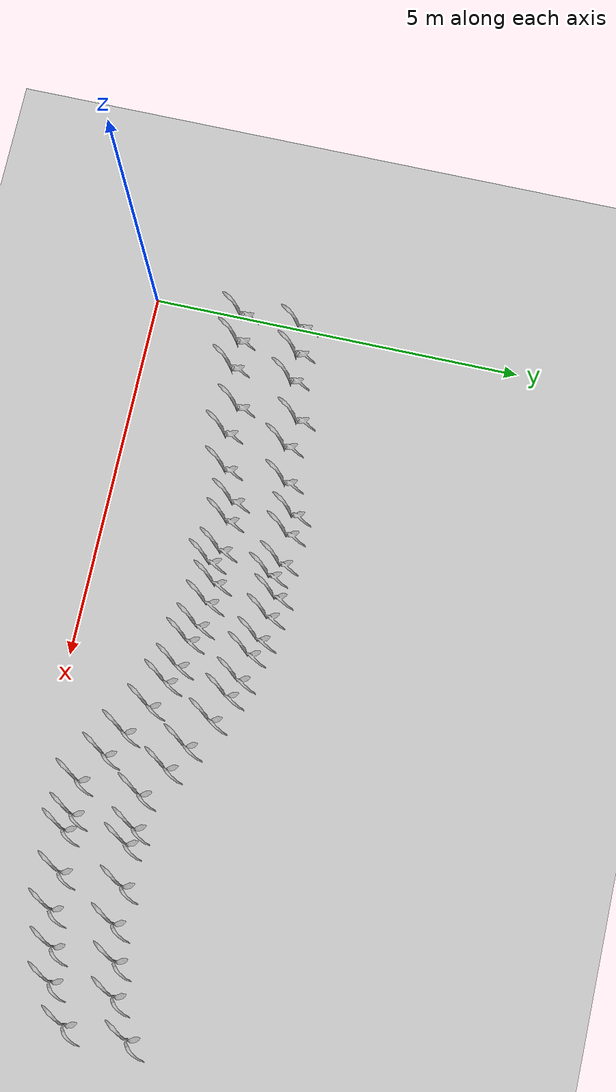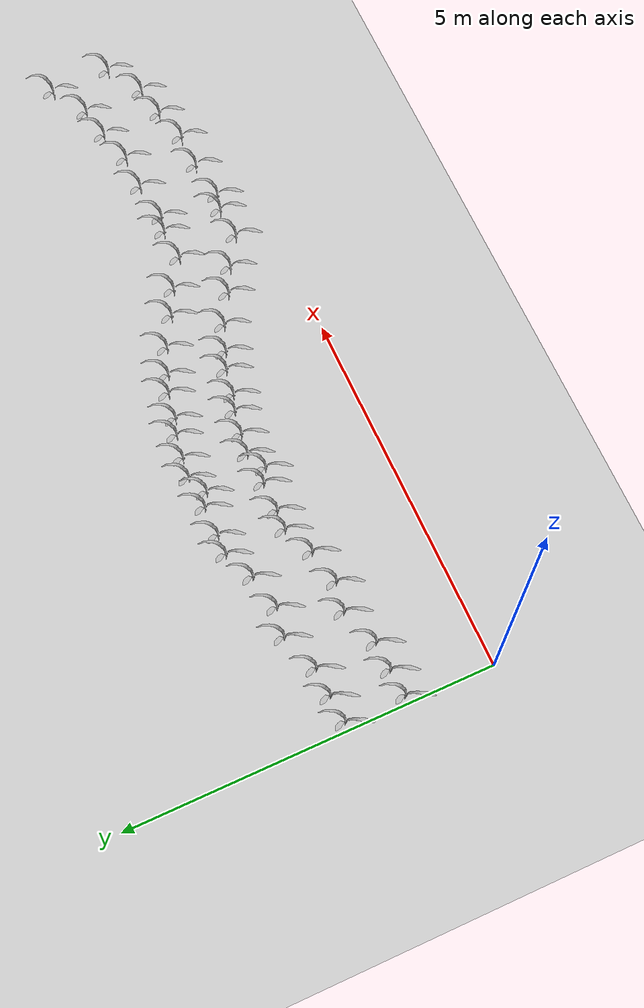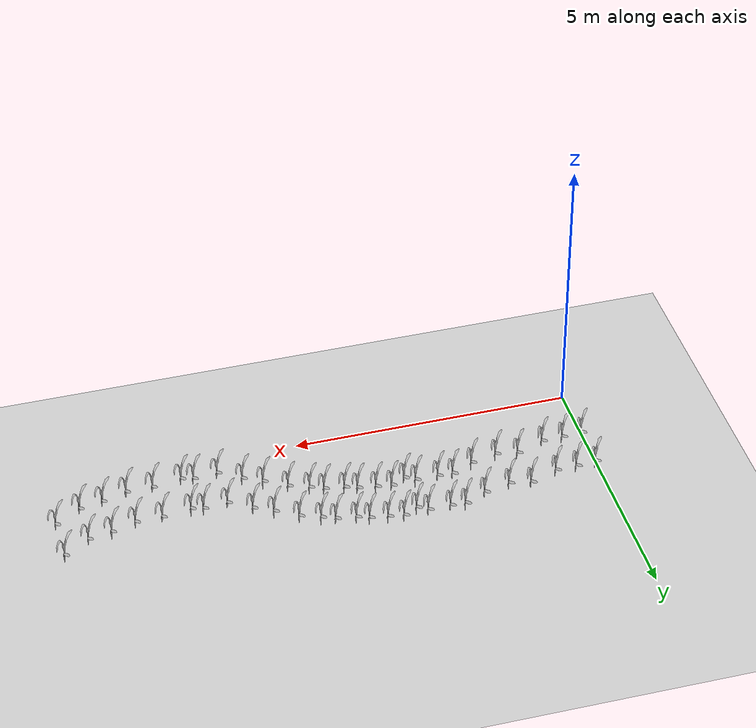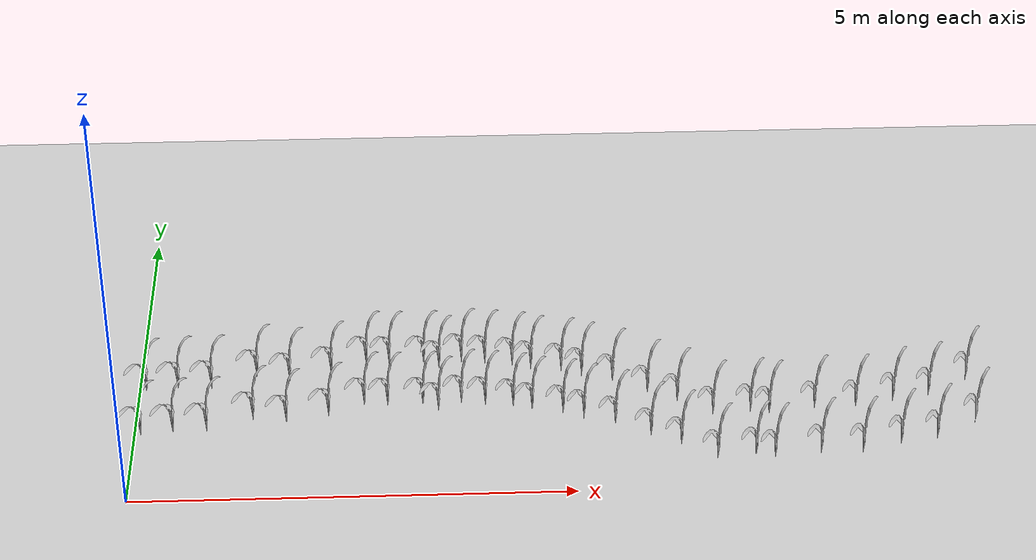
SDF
<sdf version="1.7">
 <world name="default">
  <model name="ground_plane">
   <static>1</static>
   <link name="link">
    <collision name="collision">
     <geometry><plane><normal>0 0 1</normal><size>100 100</size></plane></geometry>
     <surface>
      <contact><collide_bitmask>65535</collide_bitmask></contact>
      <friction><ode><mu>100</mu><mu2>50</mu2></ode></friction>
     </surface>
    </collision>
    <visual name="visual">
     <cast_shadows>0</cast_shadows>
     <geometry><plane><normal>0 0 1</normal><size>100 100</size></plane></geometry>
     <material>
      <script><uri>file://media/materials/scripts/gazebo.material</uri><name>Gazebo/Grey</name></script>
     </material>
    </visual>
   </link>
  </model>
  <model name="maize_row_clone_0">
   <model name="maize_02">
    <pose>-4.63661 0.027408 0 0 -0 0</pose>
    <link name="maize_02_link">
     <inertial>
      <pose>0 0 0.01 0 -0 0</pose>
      <mass>0.3</mass>
      <inertia>
       <ixx>0.00334167</ixx>
       <ixy>0</ixy>
       <ixz>0</ixz>
       <iyy>0.00334167</iyy>
       <iyz>0</iyz>
       <izz>1.66667e-05</izz>
      </inertia>
      <pose>0 0 0.1 0 -0 0</pose>
     </inertial>
     <collision name="collision">
      <pose>0 0 0.2 0 -0 0</pose>
      <geometry><box><size>0.02 0.02 0.4</size></box></geometry>
      <surface><friction><ode><mu>10</mu><mu2>10</mu2></ode></friction></surface>
     </collision>
     <visual name="visual">
      <geometry>
       <mesh><uri>model://maize_02/meshes/maize_02.dae</uri><scale>0.683166 0.683166 0.683166</scale></mesh>
      </geometry>
     </visual>
    </link>
   </model>
   <model name="maize_02_clone">
    <pose>-4.27241 0.05616 0 0 -0 0</pose>
    <link name="maize_02_link">
     <inertial>
      <pose>0 0 0.01 0 -0 0</pose>
      <mass>0.3</mass>
      <inertia>
       <ixx>0.00334167</ixx>
       <ixy>0</ixy>
       <ixz>0</ixz>
       <iyy>0.00334167</iyy>
       <iyz>0</iyz>
       <izz>1.66667e-05</izz>
      </inertia>
      <pose>0 0 0.1 0 -0 0</pose>
     </inertial>
     <collision name="collision">
      <pose>0 0 0.2 0 -0 0</pose>
      <geometry><box><size>0.02 0.02 0.4</size></box></geometry>
      <surface><friction><ode><mu>10</mu><mu2>10</mu2></ode></friction></surface>
     </collision>
     <visual name="visual">
      <geometry>
       <mesh><uri>model://maize_02/meshes/maize_02.dae</uri><scale>0.683166 0.683166 0.683166</scale></mesh>
      </geometry>
     </visual>
    </link>
   </model>
   <model name="maize_02_clone_0">
    <pose>-3.88904 0.065744 0 0 -0 0</pose>
    <link name="maize_02_link">
     <inertial>
      <pose>0 0 0.01 0 -0 0</pose>
      <mass>0.3</mass>
      <inertia>
       <ixx>0.00334167</ixx>
       <ixy>0</ixy>
       <ixz>0</ixz>
       <iyy>0.00334167</iyy>
       <iyz>0</iyz>
       <izz>1.66667e-05</izz>
      </inertia>
      <pose>0 0 0.1 0 -0 0</pose>
     </inertial>
     <collision name="collision">
      <pose>0 0 0.2 0 -0 0</pose>
      <geometry><box><size>0.02 0.02 0.4</size></box></geometry>
      <surface><friction><ode><mu>10</mu><mu2>10</mu2></ode></friction></surface>
     </collision>
     <visual name="visual">
      <geometry>
       <mesh><uri>model://maize_02/meshes/maize_02.dae</uri><scale>0.683166 0.683166 0.683166</scale></mesh>
      </geometry>
     </visual>
    </link>
   </model>
   <model name="maize_02_clone_1">
    <pose>-3.37149 0.257428 0 0 -0 0</pose>
    <link name="maize_02_link">
     <inertial>
      <pose>0 0 0.01 0 -0 0</pose>
      <mass>0.3</mass>
      <inertia>
       <ixx>0.00334167</ixx>
       <ixy>0</ixy>
       <ixz>0</ixz>
       <iyy>0.00334167</iyy>
       <iyz>0</iyz>
       <izz>1.66667e-05</izz>
      </inertia>
      <pose>0 0 0.1 0 -0 0</pose>
     </inertial>
     <collision name="collision">
      <pose>0 0 0.2 0 -0 0</pose>
      <geometry><box><size>0.02 0.02 0.4</size></box></geometry>
      <surface><friction><ode><mu>10</mu><mu2>10</mu2></ode></friction></surface>
     </collision>
     <visual name="visual">
      <geometry>
       <mesh><uri>model://maize_02/meshes/maize_02.dae</uri><scale>0.683166 0.683166 0.683166</scale></mesh>
      </geometry>
     </visual>
    </link>
   </model>
   <model name="maize_02_clone_10">
    <pose>-0.393317 0.390237 0 0 -0 0</pose>
    <link name="maize_02_link">
     <inertial>
      <pose>0 0 0.01 0 -0 0</pose>
      <mass>0.3</mass>
      <inertia>
       <ixx>0.00334167</ixx>
       <ixy>0</ixy>
       <ixz>0</ixz>
       <iyy>0.00334167</iyy>
       <iyz>0</iyz>
       <izz>1.66667e-05</izz>
      </inertia>
      <pose>0 0 0.1 0 -0 0</pose>
     </inertial>
     <collision name="collision">
      <pose>0 0 0.2 0 -0 0</pose>
      <geometry><box><size>0.02 0.02 0.4</size></box></geometry>
      <surface><friction><ode><mu>10</mu><mu2>10</mu2></ode></friction></surface>
     </collision>
     <visual name="visual">
      <geometry>
       <mesh><uri>model://maize_02/meshes/maize_02.dae</uri><scale>0.683166 0.683166 0.683166</scale></mesh>
      </geometry>
     </visual>
    </link>
   </model>
   <model name="maize_02_clone_11">
    <pose>0.410873 0.154867 0 0 -0 0</pose>
    <link name="maize_02_link">
     <inertial>
      <pose>0 0 0.01 0 -0 0</pose>
      <mass>0.3</mass>
      <inertia>
       <ixx>0.00334167</ixx>
       <ixy>0</ixy>
       <ixz>0</ixz>
       <iyy>0.00334167</iyy>
       <iyz>0</iyz>
       <izz>1.66667e-05</izz>
      </inertia>
      <pose>0 0 0.1 0 -0 0</pose>
     </inertial>
     <collision name="collision">
      <pose>0 0 0.2 0 -0 0</pose>
      <geometry><box><size>0.02 0.02 0.4</size></box></geometry>
      <surface><friction><ode><mu>10</mu><mu2>10</mu2></ode></friction></surface>
     </collision>
     <visual name="visual">
      <geometry>
       <mesh><uri>model://maize_02/meshes/maize_02.dae</uri><scale>0.683166 0.683166 0.683166</scale></mesh>
      </geometry>
     </visual>
    </link>
   </model>
   <model name="maize_02_clone_12">
    <pose>0.175502 0.252945 0 0 -0 0</pose>
    <link name="maize_02_link">
     <inertial>
      <pose>0 0 0.01 0 -0 0</pose>
      <mass>0.3</mass>
      <inertia>
       <ixx>0.00334167</ixx>
       <ixy>0</ixy>
       <ixz>0</ixz>
       <iyy>0.00334167</iyy>
       <iyz>0</iyz>
       <izz>1.66667e-05</izz>
      </inertia>
      <pose>0 0 0.1 0 -0 0</pose>
     </inertial>
     <collision name="collision">
      <pose>0 0 0.2 0 -0 0</pose>
      <geometry><box><size>0.02 0.02 0.4</size></box></geometry>
      <surface><friction><ode><mu>10</mu><mu2>10</mu2></ode></friction></surface>
     </collision>
     <visual name="visual">
      <geometry>
       <mesh><uri>model://maize_02/meshes/maize_02.dae</uri><scale>0.683166 0.683166 0.683166</scale></mesh>
      </geometry>
     </visual>
    </link>
   </model>
   <model name="maize_02_clone_13">
    <pose>0.76395 0.017569 0 0 -0 0</pose>
    <link name="maize_02_link">
     <inertial>
      <pose>0 0 0.01 0 -0 0</pose>
      <mass>0.3</mass>
      <inertia>
       <ixx>0.00334167</ixx>
       <ixy>0</ixy>
       <ixz>0</ixz>
       <iyy>0.00334167</iyy>
       <iyz>0</iyz>
       <izz>1.66667e-05</izz>
      </inertia>
      <pose>0 0 0.1 0 -0 0</pose>
     </inertial>
     <collision name="collision">
      <pose>0 0 0.2 0 -0 0</pose>
      <geometry><box><size>0.02 0.02 0.4</size></box></geometry>
      <surface><friction><ode><mu>10</mu><mu2>10</mu2></ode></friction></surface>
     </collision>
     <visual name="visual">
      <geometry>
       <mesh><uri>model://maize_02/meshes/maize_02.dae</uri><scale>0.683166 0.683166 0.683166</scale></mesh>
      </geometry>
     </visual>
    </link>
   </model>
   <model name="maize_02_clone_14">
    <pose>1.15624 -0.217806 0 0 -0 0</pose>
    <link name="maize_02_link">
     <inertial>
      <pose>0 0 0.01 0 -0 0</pose>
      <mass>0.3</mass>
      <inertia>
       <ixx>0.00334167</ixx>
       <ixy>0</ixy>
       <ixz>0</ixz>
       <iyy>0.00334167</iyy>
       <iyz>0</iyz>
       <izz>1.66667e-05</izz>
      </inertia>
      <pose>0 0 0.1 0 -0 0</pose>
     </inertial>
     <collision name="collision">
      <pose>0 0 0.2 0 -0 0</pose>
      <geometry><box><size>0.02 0.02 0.4</size></box></geometry>
      <surface><friction><ode><mu>10</mu><mu2>10</mu2></ode></friction></surface>
     </collision>
     <visual name="visual">
      <geometry>
       <mesh><uri>model://maize_02/meshes/maize_02.dae</uri><scale>0.683166 0.683166 0.683166</scale></mesh>
      </geometry>
     </visual>
    </link>
   </model>
   <model name="maize_02_clone_15">
    <pose>1.48967 -0.39434 0 0 -0 0</pose>
    <link name="maize_02_link">
     <inertial>
      <pose>0 0 0.01 0 -0 0</pose>
      <mass>0.3</mass>
      <inertia>
       <ixx>0.00334167</ixx>
       <ixy>0</ixy>
       <ixz>0</ixz>
       <iyy>0.00334167</iyy>
       <iyz>0</iyz>
       <izz>1.66667e-05</izz>
      </inertia>
      <pose>0 0 0.1 0 -0 0</pose>
     </inertial>
     <collision name="collision">
      <pose>0 0 0.2 0 -0 0</pose>
      <geometry><box><size>0.02 0.02 0.4</size></box></geometry>
      <surface><friction><ode><mu>10</mu><mu2>10</mu2></ode></friction></surface>
     </collision>
     <visual name="visual">
      <geometry>
       <mesh><uri>model://maize_02/meshes/maize_02.dae</uri><scale>0.683166 0.683166 0.683166</scale></mesh>
      </geometry>
     </visual>
    </link>
   </model>
   <model name="maize_02_clone_16">
    <pose>1.88196 -0.649333 0 0 -0 0</pose>
    <link name="maize_02_link">
     <inertial>
      <pose>0 0 0.01 0 -0 0</pose>
      <mass>0.3</mass>
      <inertia>
       <ixx>0.00334167</ixx>
       <ixy>0</ixy>
       <ixz>0</ixz>
       <iyy>0.00334167</iyy>
       <iyz>0</iyz>
       <izz>1.66667e-05</izz>
      </inertia>
      <pose>0 0 0.1 0 -0 0</pose>
     </inertial>
     <collision name="collision">
      <pose>0 0 0.2 0 -0 0</pose>
      <geometry><box><size>0.02 0.02 0.4</size></box></geometry>
      <surface><friction><ode><mu>10</mu><mu2>10</mu2></ode></friction></surface>
     </collision>
     <visual name="visual">
      <geometry>
       <mesh><uri>model://maize_02/meshes/maize_02.dae</uri><scale>0.683166 0.683166 0.683166</scale></mesh>
      </geometry>
     </visual>
    </link>
   </model>
   <model name="maize_02_clone_17">
    <pose>2.52627 -0.672048 0 0 -0 0</pose>
    <link name="maize_02_link">
     <inertial>
      <pose>0 0 0.01 0 -0 0</pose>
      <mass>0.3</mass>
      <inertia>
       <ixx>0.00334167</ixx>
       <ixy>0</ixy>
       <ixz>0</ixz>
       <iyy>0.00334167</iyy>
       <iyz>0</iyz>
       <izz>1.66667e-05</izz>
      </inertia>
      <pose>0 0 0.1 0 -0 0</pose>
     </inertial>
     <collision name="collision">
      <pose>0 0 0.2 0 -0 0</pose>
      <geometry><box><size>0.02 0.02 0.4</size></box></geometry>
      <surface><friction><ode><mu>10</mu><mu2>10</mu2></ode></friction></surface>
     </collision>
     <visual name="visual">
      <geometry>
       <mesh><uri>model://maize_02/meshes/maize_02.dae</uri><scale>0.683166 0.683166 0.683166</scale></mesh>
      </geometry>
     </visual>
    </link>
   </model>
   <model name="maize_02_clone_18">
    <pose>2.3152 -0.619273 0 0 -0 0</pose>
    <link name="maize_02_link">
     <inertial>
      <pose>0 0 0.01 0 -0 0</pose>
      <mass>0.3</mass>
      <inertia>
       <ixx>0.00334167</ixx>
       <ixy>0</ixy>
       <ixz>0</ixz>
       <iyy>0.00334167</iyy>
       <iyz>0</iyz>
       <izz>1.66667e-05</izz>
      </inertia>
      <pose>0 0 0.1 0 -0 0</pose>
     </inertial>
     <collision name="collision">
      <pose>0 0 0.2 0 -0 0</pose>
      <geometry><box><size>0.02 0.02 0.4</size></box></geometry>
      <surface><friction><ode><mu>10</mu><mu2>10</mu2></ode></friction></surface>
     </collision>
     <visual name="visual">
      <geometry>
       <mesh><uri>model://maize_02/meshes/maize_02.dae</uri><scale>0.683166 0.683166 0.683166</scale></mesh>
      </geometry>
     </visual>
    </link>
   </model>
   <model name="maize_02_clone_19">
    <pose>3.05425 -0.592874 0 0 -0 0</pose>
    <link name="maize_02_link">
     <inertial>
      <pose>0 0 0.01 0 -0 0</pose>
      <mass>0.3</mass>
      <inertia>
       <ixx>0.00334167</ixx>
       <ixy>0</ixy>
       <ixz>0</ixz>
       <iyy>0.00334167</iyy>
       <iyz>0</iyz>
       <izz>1.66667e-05</izz>
      </inertia>
      <pose>0 0 0.1 0 -0 0</pose>
     </inertial>
     <collision name="collision">
      <pose>0 0 0.2 0 -0 0</pose>
      <geometry><box><size>0.02 0.02 0.4</size></box></geometry>
      <surface><friction><ode><mu>10</mu><mu2>10</mu2></ode></friction></surface>
     </collision>
     <visual name="visual">
      <geometry>
       <mesh><uri>model://maize_02/meshes/maize_02.dae</uri><scale>0.683166 0.683166 0.683166</scale></mesh>
      </geometry>
     </visual>
    </link>
   </model>
   <model name="maize_02_clone_2">
    <pose>-2.98813 0.180754 0 0 -0 0</pose>
    <link name="maize_02_link">
     <inertial>
      <pose>0 0 0.01 0 -0 0</pose>
      <mass>0.3</mass>
      <inertia>
       <ixx>0.00334167</ixx>
       <ixy>0</ixy>
       <ixz>0</ixz>
       <iyy>0.00334167</iyy>
       <iyz>0</iyz>
       <izz>1.66667e-05</izz>
      </inertia>
      <pose>0 0 0.1 0 -0 0</pose>
     </inertial>
     <collision name="collision">
      <pose>0 0 0.2 0 -0 0</pose>
      <geometry><box><size>0.02 0.02 0.4</size></box></geometry>
      <surface><friction><ode><mu>10</mu><mu2>10</mu2></ode></friction></surface>
     </collision>
     <visual name="visual">
      <geometry>
       <mesh><uri>model://maize_02/meshes/maize_02.dae</uri><scale>0.683166 0.683166 0.683166</scale></mesh>
      </geometry>
     </visual>
    </link>
   </model>
   <model name="maize_02_clone_20">
    <pose>3.5294 -0.592874 0 0 -0 0</pose>
    <link name="maize_02_link">
     <inertial>
      <pose>0 0 0.01 0 -0 0</pose>
      <mass>0.3</mass>
      <inertia>
       <ixx>0.00334167</ixx>
       <ixy>0</ixy>
       <ixz>0</ixz>
       <iyy>0.00334167</iyy>
       <iyz>0</iyz>
       <izz>1.66667e-05</izz>
      </inertia>
      <pose>0 0 0.1 0 -0 0</pose>
     </inertial>
     <collision name="collision">
      <pose>0 0 0.2 0 -0 0</pose>
      <geometry><box><size>0.02 0.02 0.4</size></box></geometry>
      <surface><friction><ode><mu>10</mu><mu2>10</mu2></ode></friction></surface>
     </collision>
     <visual name="visual">
      <geometry>
       <mesh><uri>model://maize_02/meshes/maize_02.dae</uri><scale>0.683166 0.683166 0.683166</scale></mesh>
      </geometry>
     </visual>
    </link>
   </model>
   <model name="maize_02_clone_21">
    <pose>3.97801 -0.460902 0 0 -0 0</pose>
    <link name="maize_02_link">
     <inertial>
      <pose>0 0 0.01 0 -0 0</pose>
      <mass>0.3</mass>
      <inertia>
       <ixx>0.00334167</ixx>
       <ixy>0</ixy>
       <ixz>0</ixz>
       <iyy>0.00334167</iyy>
       <iyz>0</iyz>
       <izz>1.66667e-05</izz>
      </inertia>
      <pose>0 0 0.1 0 -0 0</pose>
     </inertial>
     <collision name="collision">
      <pose>0 0 0.2 0 -0 0</pose>
      <geometry><box><size>0.02 0.02 0.4</size></box></geometry>
      <surface><friction><ode><mu>10</mu><mu2>10</mu2></ode></friction></surface>
     </collision>
     <visual name="visual">
      <geometry>
       <mesh><uri>model://maize_02/meshes/maize_02.dae</uri><scale>0.683166 0.683166 0.683166</scale></mesh>
      </geometry>
     </visual>
    </link>
   </model>
   <model name="maize_02_clone_22">
    <pose>4.40033 -0.381713 0 0 -0 0</pose>
    <link name="maize_02_link">
     <inertial>
      <pose>0 0 0.01 0 -0 0</pose>
      <mass>0.3</mass>
      <inertia>
       <ixx>0.00334167</ixx>
       <ixy>0</ixy>
       <ixz>0</ixz>
       <iyy>0.00334167</iyy>
       <iyz>0</iyz>
       <izz>1.66667e-05</izz>
      </inertia>
      <pose>0 0 0.1 0 -0 0</pose>
     </inertial>
     <collision name="collision">
      <pose>0 0 0.2 0 -0 0</pose>
      <geometry><box><size>0.02 0.02 0.4</size></box></geometry>
      <surface><friction><ode><mu>10</mu><mu2>10</mu2></ode></friction></surface>
     </collision>
     <visual name="visual">
      <geometry>
       <mesh><uri>model://maize_02/meshes/maize_02.dae</uri><scale>0.683166 0.683166 0.683166</scale></mesh>
      </geometry>
     </visual>
    </link>
   </model>
   <model name="maize_02_clone_23">
    <pose>4.87542 -0.091378 0 0 -0 0</pose>
    <link name="maize_02_link">
     <inertial>
      <pose>0 0 0.01 0 -0 0</pose>
      <mass>0.3</mass>
      <inertia>
       <ixx>0.00334167</ixx>
       <ixy>0</ixy>
       <ixz>0</ixz>
       <iyy>0.00334167</iyy>
       <iyz>0</iyz>
       <izz>1.66667e-05</izz>
      </inertia>
      <pose>0 0 0.1 0 -0 0</pose>
     </inertial>
     <collision name="collision">
      <pose>0 0 0.2 0 -0 0</pose>
      <geometry><box><size>0.02 0.02 0.4</size></box></geometry>
      <surface><friction><ode><mu>10</mu><mu2>10</mu2></ode></friction></surface>
     </collision>
     <visual name="visual">
      <geometry>
       <mesh><uri>model://maize_02/meshes/maize_02.dae</uri><scale>0.683166 0.683166 0.683166</scale></mesh>
      </geometry>
     </visual>
    </link>
   </model>
   <model name="maize_02_clone_24">
    <pose>-0.987177 0.483854 0 0 -0 0</pose>
    <link name="maize_02_link">
     <inertial>
      <pose>0 0 0.01 0 -0 0</pose>
      <mass>0.3</mass>
      <inertia>
       <ixx>0.00334167</ixx>
       <ixy>0</ixy>
       <ixz>0</ixz>
       <iyy>0.00334167</iyy>
       <iyz>0</iyz>
       <izz>1.66667e-05</izz>
      </inertia>
      <pose>0 0 0.1 0 -0 0</pose>
     </inertial>
     <collision name="collision">
      <pose>0 0 0.2 0 -0 0</pose>
      <geometry><box><size>0.02 0.02 0.4</size></box></geometry>
      <surface><friction><ode><mu>10</mu><mu2>10</mu2></ode></friction></surface>
     </collision>
     <visual name="visual">
      <geometry>
       <mesh><uri>model://maize_02/meshes/maize_02.dae</uri><scale>0.683166 0.683166 0.683166</scale></mesh>
      </geometry>
     </visual>
    </link>
   </model>
   <model name="maize_02_clone_3">
    <pose>-2.50892 0.28618 0 0 -0 0</pose>
    <link name="maize_02_link">
     <inertial>
      <pose>0 0 0.01 0 -0 0</pose>
      <mass>0.3</mass>
      <inertia>
       <ixx>0.00334167</ixx>
       <ixy>0</ixy>
       <ixz>0</ixz>
       <iyy>0.00334167</iyy>
       <iyz>0</iyz>
       <izz>1.66667e-05</izz>
      </inertia>
      <pose>0 0 0.1 0 -0 0</pose>
     </inertial>
     <collision name="collision">
      <pose>0 0 0.2 0 -0 0</pose>
      <geometry><box><size>0.02 0.02 0.4</size></box></geometry>
      <surface><friction><ode><mu>10</mu><mu2>10</mu2></ode></friction></surface>
     </collision>
     <visual name="visual">
      <geometry>
       <mesh><uri>model://maize_02/meshes/maize_02.dae</uri><scale>0.683166 0.683166 0.683166</scale></mesh>
      </geometry>
     </visual>
    </link>
   </model>
   <model name="maize_02_clone_4">
    <pose>-1.83451 0.458469 0 0 -0 0</pose>
    <link name="maize_02_link">
     <inertial>
      <pose>0 0 0.01 0 -0 0</pose>
      <mass>0.3</mass>
      <inertia>
       <ixx>0.00334167</ixx>
       <ixy>0</ixy>
       <ixz>0</ixz>
       <iyy>0.00334167</iyy>
       <iyz>0</iyz>
       <izz>1.66667e-05</izz>
      </inertia>
      <pose>0 0 0.1 0 -0 0</pose>
     </inertial>
     <collision name="collision">
      <pose>0 0 0.2 0 -0 0</pose>
      <geometry><box><size>0.02 0.02 0.4</size></box></geometry>
      <surface><friction><ode><mu>10</mu><mu2>10</mu2></ode></friction></surface>
     </collision>
     <visual name="visual">
      <geometry>
       <mesh><uri>model://maize_02/meshes/maize_02.dae</uri><scale>0.683166 0.683166 0.683166</scale></mesh>
      </geometry>
     </visual>
    </link>
   </model>
   <model name="maize_02_clone_5">
    <pose>-1.25106 0.353746 0 0 -0 0</pose>
    <link name="maize_02_link">
     <inertial>
      <pose>0 0 0.01 0 -0 0</pose>
      <mass>0.3</mass>
      <inertia>
       <ixx>0.00334167</ixx>
       <ixy>0</ixy>
       <ixz>0</ixz>
       <iyy>0.00334167</iyy>
       <iyz>0</iyz>
       <izz>1.66667e-05</izz>
      </inertia>
      <pose>0 0 0.1 0 -0 0</pose>
     </inertial>
     <collision name="collision">
      <pose>0 0 0.2 0 -0 0</pose>
      <geometry><box><size>0.02 0.02 0.4</size></box></geometry>
      <surface><friction><ode><mu>10</mu><mu2>10</mu2></ode></friction></surface>
     </collision>
     <visual name="visual">
      <geometry>
       <mesh><uri>model://maize_02/meshes/maize_02.dae</uri><scale>0.683166 0.683166 0.683166</scale></mesh>
      </geometry>
     </visual>
    </link>
   </model>
   <model name="maize_02_clone_6">
    <pose>-1.43059 0.458469 0 0 -0 0</pose>
    <link name="maize_02_link">
     <inertial>
      <pose>0 0 0.01 0 -0 0</pose>
      <mass>0.3</mass>
      <inertia>
       <ixx>0.00334167</ixx>
       <ixy>0</ixy>
       <ixz>0</ixz>
       <iyy>0.00334167</iyy>
       <iyz>0</iyz>
       <izz>1.66667e-05</izz>
      </inertia>
      <pose>0 0 0.1 0 -0 0</pose>
     </inertial>
     <collision name="collision">
      <pose>0 0 0.2 0 -0 0</pose>
      <geometry><box><size>0.02 0.02 0.4</size></box></geometry>
      <surface><friction><ode><mu>10</mu><mu2>10</mu2></ode></friction></surface>
     </collision>
     <visual name="visual">
      <geometry>
       <mesh><uri>model://maize_02/meshes/maize_02.dae</uri><scale>0.683166 0.683166 0.683166</scale></mesh>
      </geometry>
     </visual>
    </link>
   </model>
   <model name="maize_02_clone_7">
    <pose>-2.10378 0.473427 0 0 -0 0</pose>
    <link name="maize_02_link">
     <inertial>
      <pose>0 0 0.01 0 -0 0</pose>
      <mass>0.3</mass>
      <inertia>
       <ixx>0.00334167</ixx>
       <ixy>0</ixy>
       <ixz>0</ixz>
       <iyy>0.00334167</iyy>
       <iyz>0</iyz>
       <izz>1.66667e-05</izz>
      </inertia>
      <pose>0 0 0.1 0 -0 0</pose>
     </inertial>
     <collision name="collision">
      <pose>0 0 0.2 0 -0 0</pose>
      <geometry><box><size>0.02 0.02 0.4</size></box></geometry>
      <surface><friction><ode><mu>10</mu><mu2>10</mu2></ode></friction></surface>
     </collision>
     <visual name="visual">
      <geometry>
       <mesh><uri>model://maize_02/meshes/maize_02.dae</uri><scale>0.683166 0.683166 0.683166</scale></mesh>
      </geometry>
     </visual>
    </link>
   </model>
   <model name="maize_02_clone_8">
    <pose>-0.712516 0.443508 0 0 -0 0</pose>
    <link name="maize_02_link">
     <inertial>
      <pose>0 0 0.01 0 -0 0</pose>
      <mass>0.3</mass>
      <inertia>
       <ixx>0.00334167</ixx>
       <ixy>0</ixy>
       <ixz>0</ixz>
       <iyy>0.00334167</iyy>
       <iyz>0</iyz>
       <izz>1.66667e-05</izz>
      </inertia>
      <pose>0 0 0.1 0 -0 0</pose>
     </inertial>
     <collision name="collision">
      <pose>0 0 0.2 0 -0 0</pose>
      <geometry><box><size>0.02 0.02 0.4</size></box></geometry>
      <surface><friction><ode><mu>10</mu><mu2>10</mu2></ode></friction></surface>
     </collision>
     <visual name="visual">
      <geometry>
       <mesh><uri>model://maize_02/meshes/maize_02.dae</uri><scale>0.683166 0.683166 0.683166</scale></mesh>
      </geometry>
     </visual>
    </link>
   </model>
   <model name="maize_02_clone_9">
    <pose>-0.177553 0.311777 0 0 -0 0</pose>
    <link name="maize_02_link">
     <inertial>
      <pose>0 0 0.01 0 -0 0</pose>
      <mass>0.3</mass>
      <inertia>
       <ixx>0.00334167</ixx>
       <ixy>0</ixy>
       <ixz>0</ixz>
       <iyy>0.00334167</iyy>
       <iyz>0</iyz>
       <izz>1.66667e-05</izz>
      </inertia>
      <pose>0 0 0.1 0 -0 0</pose>
     </inertial>
     <collision name="collision">
      <pose>0 0 0.2 0 -0 0</pose>
      <geometry><box><size>0.02 0.02 0.4</size></box></geometry>
      <surface><friction><ode><mu>10</mu><mu2>10</mu2></ode></friction></surface>
     </collision>
     <visual name="visual">
      <geometry>
       <mesh><uri>model://maize_02/meshes/maize_02.dae</uri><scale>0.683166 0.683166 0.683166</scale></mesh>
      </geometry>
     </visual>
    </link>
   </model>
   <static>0</static>
   <pose>4.70489 1.16764 2e-05 0 -4e-06 0</pose>
  </model>
  <model name="maize_row_clone_0_clone">
   <model name="maize_02">
    <pose>-4.63661 0.027408 0 0 -0 0</pose>
    <link name="maize_02_link">
     <inertial>
      <pose>0 0 0.01 0 -0 0</pose>
      <mass>0.3</mass>
      <inertia>
       <ixx>0.00334167</ixx>
       <ixy>0</ixy>
       <ixz>0</ixz>
       <iyy>0.00334167</iyy>
       <iyz>0</iyz>
       <izz>1.66667e-05</izz>
      </inertia>
      <pose>0 0 0.1 0 -0 0</pose>
     </inertial>
     <collision name="collision">
      <pose>0 0 0.2 0 -0 0</pose>
      <geometry><box><size>0.02 0.02 0.4</size></box></geometry>
      <surface><friction><ode><mu>10</mu><mu2>10</mu2></ode></friction></surface>
     </collision>
     <visual name="visual">
      <geometry>
       <mesh><uri>model://maize_02/meshes/maize_02.dae</uri><scale>0.683166 0.683166 0.683166</scale></mesh>
      </geometry>
     </visual>
    </link>
   </model>
   <model name="maize_02_clone">
    <pose>-4.27241 0.05616 0 0 -0 0</pose>
    <link name="maize_02_link">
     <inertial>
      <pose>0 0 0.01 0 -0 0</pose>
      <mass>0.3</mass>
      <inertia>
       <ixx>0.00334167</ixx>
       <ixy>0</ixy>
       <ixz>0</ixz>
       <iyy>0.00334167</iyy>
       <iyz>0</iyz>
       <izz>1.66667e-05</izz>
      </inertia>
      <pose>0 0 0.1 0 -0 0</pose>
     </inertial>
     <collision name="collision">
      <pose>0 0 0.2 0 -0 0</pose>
      <geometry><box><size>0.02 0.02 0.4</size></box></geometry>
      <surface><friction><ode><mu>10</mu><mu2>10</mu2></ode></friction></surface>
     </collision>
     <visual name="visual">
      <geometry>
       <mesh><uri>model://maize_02/meshes/maize_02.dae</uri><scale>0.683166 0.683166 0.683166</scale></mesh>
      </geometry>
     </visual>
    </link>
   </model>
   <model name="maize_02_clone_0">
    <pose>-3.88904 0.065744 0 0 -0 0</pose>
    <link name="maize_02_link">
     <inertial>
      <pose>0 0 0.01 0 -0 0</pose>
      <mass>0.3</mass>
      <inertia>
       <ixx>0.00334167</ixx>
       <ixy>0</ixy>
       <ixz>0</ixz>
       <iyy>0.00334167</iyy>
       <iyz>0</iyz>
       <izz>1.66667e-05</izz>
      </inertia>
      <pose>0 0 0.1 0 -0 0</pose>
     </inertial>
     <collision name="collision">
      <pose>0 0 0.2 0 -0 0</pose>
      <geometry><box><size>0.02 0.02 0.4</size></box></geometry>
      <surface><friction><ode><mu>10</mu><mu2>10</mu2></ode></friction></surface>
     </collision>
     <visual name="visual">
      <geometry>
       <mesh><uri>model://maize_02/meshes/maize_02.dae</uri><scale>0.683166 0.683166 0.683166</scale></mesh>
      </geometry>
     </visual>
    </link>
   </model>
   <model name="maize_02_clone_1">
    <pose>-3.37149 0.257428 0 0 -0 0</pose>
    <link name="maize_02_link">
     <inertial>
      <pose>0 0 0.01 0 -0 0</pose>
      <mass>0.3</mass>
      <inertia>
       <ixx>0.00334167</ixx>
       <ixy>0</ixy>
       <ixz>0</ixz>
       <iyy>0.00334167</iyy>
       <iyz>0</iyz>
       <izz>1.66667e-05</izz>
      </inertia>
      <pose>0 0 0.1 0 -0 0</pose>
     </inertial>
     <collision name="collision">
      <pose>0 0 0.2 0 -0 0</pose>
      <geometry><box><size>0.02 0.02 0.4</size></box></geometry>
      <surface><friction><ode><mu>10</mu><mu2>10</mu2></ode></friction></surface>
     </collision>
     <visual name="visual">
      <geometry>
       <mesh><uri>model://maize_02/meshes/maize_02.dae</uri><scale>0.683166 0.683166 0.683166</scale></mesh>
      </geometry>
     </visual>
    </link>
   </model>
   <model name="maize_02_clone_10">
    <pose>-0.393317 0.390237 0 0 -0 0</pose>
    <link name="maize_02_link">
     <inertial>
      <pose>0 0 0.01 0 -0 0</pose>
      <mass>0.3</mass>
      <inertia>
       <ixx>0.00334167</ixx>
       <ixy>0</ixy>
       <ixz>0</ixz>
       <iyy>0.00334167</iyy>
       <iyz>0</iyz>
       <izz>1.66667e-05</izz>
      </inertia>
      <pose>0 0 0.1 0 -0 0</pose>
     </inertial>
     <collision name="collision">
      <pose>0 0 0.2 0 -0 0</pose>
      <geometry><box><size>0.02 0.02 0.4</size></box></geometry>
      <surface><friction><ode><mu>10</mu><mu2>10</mu2></ode></friction></surface>
     </collision>
     <visual name="visual">
      <geometry>
       <mesh><uri>model://maize_02/meshes/maize_02.dae</uri><scale>0.683166 0.683166 0.683166</scale></mesh>
      </geometry>
     </visual>
    </link>
   </model>
   <model name="maize_02_clone_11">
    <pose>0.410873 0.154867 0 0 -0 0</pose>
    <link name="maize_02_link">
     <inertial>
      <pose>0 0 0.01 0 -0 0</pose>
      <mass>0.3</mass>
      <inertia>
       <ixx>0.00334167</ixx>
       <ixy>0</ixy>
       <ixz>0</ixz>
       <iyy>0.00334167</iyy>
       <iyz>0</iyz>
       <izz>1.66667e-05</izz>
      </inertia>
      <pose>0 0 0.1 0 -0 0</pose>
     </inertial>
     <collision name="collision">
      <pose>0 0 0.2 0 -0 0</pose>
      <geometry><box><size>0.02 0.02 0.4</size></box></geometry>
      <surface><friction><ode><mu>10</mu><mu2>10</mu2></ode></friction></surface>
     </collision>
     <visual name="visual">
      <geometry>
       <mesh><uri>model://maize_02/meshes/maize_02.dae</uri><scale>0.683166 0.683166 0.683166</scale></mesh>
      </geometry>
     </visual>
    </link>
   </model>
   <model name="maize_02_clone_12">
    <pose>0.175502 0.252945 0 0 -0 0</pose>
    <link name="maize_02_link">
     <inertial>
      <pose>0 0 0.01 0 -0 0</pose>
      <mass>0.3</mass>
      <inertia>
       <ixx>0.00334167</ixx>
       <ixy>0</ixy>
       <ixz>0</ixz>
       <iyy>0.00334167</iyy>
       <iyz>0</iyz>
       <izz>1.66667e-05</izz>
      </inertia>
      <pose>0 0 0.1 0 -0 0</pose>
     </inertial>
     <collision name="collision">
      <pose>0 0 0.2 0 -0 0</pose>
      <geometry><box><size>0.02 0.02 0.4</size></box></geometry>
      <surface><friction><ode><mu>10</mu><mu2>10</mu2></ode></friction></surface>
     </collision>
     <visual name="visual">
      <geometry>
       <mesh><uri>model://maize_02/meshes/maize_02.dae</uri><scale>0.683166 0.683166 0.683166</scale></mesh>
      </geometry>
     </visual>
    </link>
   </model>
   <model name="maize_02_clone_13">
    <pose>0.76395 0.017569 0 0 -0 0</pose>
    <link name="maize_02_link">
     <inertial>
      <pose>0 0 0.01 0 -0 0</pose>
      <mass>0.3</mass>
      <inertia>
       <ixx>0.00334167</ixx>
       <ixy>0</ixy>
       <ixz>0</ixz>
       <iyy>0.00334167</iyy>
       <iyz>0</iyz>
       <izz>1.66667e-05</izz>
      </inertia>
      <pose>0 0 0.1 0 -0 0</pose>
     </inertial>
     <collision name="collision">
      <pose>0 0 0.2 0 -0 0</pose>
      <geometry><box><size>0.02 0.02 0.4</size></box></geometry>
      <surface><friction><ode><mu>10</mu><mu2>10</mu2></ode></friction></surface>
     </collision>
     <visual name="visual">
      <geometry>
       <mesh><uri>model://maize_02/meshes/maize_02.dae</uri><scale>0.683166 0.683166 0.683166</scale></mesh>
      </geometry>
     </visual>
    </link>
   </model>
   <model name="maize_02_clone_14">
    <pose>1.15624 -0.217806 0 0 -0 0</pose>
    <link name="maize_02_link">
     <inertial>
      <pose>0 0 0.01 0 -0 0</pose>
      <mass>0.3</mass>
      <inertia>
       <ixx>0.00334167</ixx>
       <ixy>0</ixy>
       <ixz>0</ixz>
       <iyy>0.00334167</iyy>
       <iyz>0</iyz>
       <izz>1.66667e-05</izz>
      </inertia>
      <pose>0 0 0.1 0 -0 0</pose>
     </inertial>
     <collision name="collision">
      <pose>0 0 0.2 0 -0 0</pose>
      <geometry><box><size>0.02 0.02 0.4</size></box></geometry>
      <surface><friction><ode><mu>10</mu><mu2>10</mu2></ode></friction></surface>
     </collision>
     <visual name="visual">
      <geometry>
       <mesh><uri>model://maize_02/meshes/maize_02.dae</uri><scale>0.683166 0.683166 0.683166</scale></mesh>
      </geometry>
     </visual>
    </link>
   </model>
   <model name="maize_02_clone_15">
    <pose>1.48967 -0.39434 0 0 -0 0</pose>
    <link name="maize_02_link">
     <inertial>
      <pose>0 0 0.01 0 -0 0</pose>
      <mass>0.3</mass>
      <inertia>
       <ixx>0.00334167</ixx>
       <ixy>0</ixy>
       <ixz>0</ixz>
       <iyy>0.00334167</iyy>
       <iyz>0</iyz>
       <izz>1.66667e-05</izz>
      </inertia>
      <pose>0 0 0.1 0 -0 0</pose>
     </inertial>
     <collision name="collision">
      <pose>0 0 0.2 0 -0 0</pose>
      <geometry><box><size>0.02 0.02 0.4</size></box></geometry>
      <surface><friction><ode><mu>10</mu><mu2>10</mu2></ode></friction></surface>
     </collision>
     <visual name="visual">
      <geometry>
       <mesh><uri>model://maize_02/meshes/maize_02.dae</uri><scale>0.683166 0.683166 0.683166</scale></mesh>
      </geometry>
     </visual>
    </link>
   </model>
   <model name="maize_02_clone_16">
    <pose>1.88196 -0.649333 0 0 -0 0</pose>
    <link name="maize_02_link">
     <inertial>
      <pose>0 0 0.01 0 -0 0</pose>
      <mass>0.3</mass>
      <inertia>
       <ixx>0.00334167</ixx>
       <ixy>0</ixy>
       <ixz>0</ixz>
       <iyy>0.00334167</iyy>
       <iyz>0</iyz>
       <izz>1.66667e-05</izz>
      </inertia>
      <pose>0 0 0.1 0 -0 0</pose>
     </inertial>
     <collision name="collision">
      <pose>0 0 0.2 0 -0 0</pose>
      <geometry><box><size>0.02 0.02 0.4</size></box></geometry>
      <surface><friction><ode><mu>10</mu><mu2>10</mu2></ode></friction></surface>
     </collision>
     <visual name="visual">
      <geometry>
       <mesh><uri>model://maize_02/meshes/maize_02.dae</uri><scale>0.683166 0.683166 0.683166</scale></mesh>
      </geometry>
     </visual>
    </link>
   </model>
   <model name="maize_02_clone_17">
    <pose>2.52627 -0.672048 0 0 -0 0</pose>
    <link name="maize_02_link">
     <inertial>
      <pose>0 0 0.01 0 -0 0</pose>
      <mass>0.3</mass>
      <inertia>
       <ixx>0.00334167</ixx>
       <ixy>0</ixy>
       <ixz>0</ixz>
       <iyy>0.00334167</iyy>
       <iyz>0</iyz>
       <izz>1.66667e-05</izz>
      </inertia>
      <pose>0 0 0.1 0 -0 0</pose>
     </inertial>
     <collision name="collision">
      <pose>0 0 0.2 0 -0 0</pose>
      <geometry><box><size>0.02 0.02 0.4</size></box></geometry>
      <surface><friction><ode><mu>10</mu><mu2>10</mu2></ode></friction></surface>
     </collision>
     <visual name="visual">
      <geometry>
       <mesh><uri>model://maize_02/meshes/maize_02.dae</uri><scale>0.683166 0.683166 0.683166</scale></mesh>
      </geometry>
     </visual>
    </link>
   </model>
   <model name="maize_02_clone_18">
    <pose>2.3152 -0.619273 0 0 -0 0</pose>
    <link name="maize_02_link">
     <inertial>
      <pose>0 0 0.01 0 -0 0</pose>
      <mass>0.3</mass>
      <inertia>
       <ixx>0.00334167</ixx>
       <ixy>0</ixy>
       <ixz>0</ixz>
       <iyy>0.00334167</iyy>
       <iyz>0</iyz>
       <izz>1.66667e-05</izz>
      </inertia>
      <pose>0 0 0.1 0 -0 0</pose>
     </inertial>
     <collision name="collision">
      <pose>0 0 0.2 0 -0 0</pose>
      <geometry><box><size>0.02 0.02 0.4</size></box></geometry>
      <surface><friction><ode><mu>10</mu><mu2>10</mu2></ode></friction></surface>
     </collision>
     <visual name="visual">
      <geometry>
       <mesh><uri>model://maize_02/meshes/maize_02.dae</uri><scale>0.683166 0.683166 0.683166</scale></mesh>
      </geometry>
     </visual>
    </link>
   </model>
   <model name="maize_02_clone_19">
    <pose>3.05425 -0.592874 0 0 -0 0</pose>
    <link name="maize_02_link">
     <inertial>
      <pose>0 0 0.01 0 -0 0</pose>
      <mass>0.3</mass>
      <inertia>
       <ixx>0.00334167</ixx>
       <ixy>0</ixy>
       <ixz>0</ixz>
       <iyy>0.00334167</iyy>
       <iyz>0</iyz>
       <izz>1.66667e-05</izz>
      </inertia>
      <pose>0 0 0.1 0 -0 0</pose>
     </inertial>
     <collision name="collision">
      <pose>0 0 0.2 0 -0 0</pose>
      <geometry><box><size>0.02 0.02 0.4</size></box></geometry>
      <surface><friction><ode><mu>10</mu><mu2>10</mu2></ode></friction></surface>
     </collision>
     <visual name="visual">
      <geometry>
       <mesh><uri>model://maize_02/meshes/maize_02.dae</uri><scale>0.683166 0.683166 0.683166</scale></mesh>
      </geometry>
     </visual>
    </link>
   </model>
   <model name="maize_02_clone_2">
    <pose>-2.98813 0.180754 0 0 -0 0</pose>
    <link name="maize_02_link">
     <inertial>
      <pose>0 0 0.01 0 -0 0</pose>
      <mass>0.3</mass>
      <inertia>
       <ixx>0.00334167</ixx>
       <ixy>0</ixy>
       <ixz>0</ixz>
       <iyy>0.00334167</iyy>
       <iyz>0</iyz>
       <izz>1.66667e-05</izz>
      </inertia>
      <pose>0 0 0.1 0 -0 0</pose>
     </inertial>
     <collision name="collision">
      <pose>0 0 0.2 0 -0 0</pose>
      <geometry><box><size>0.02 0.02 0.4</size></box></geometry>
      <surface><friction><ode><mu>10</mu><mu2>10</mu2></ode></friction></surface>
     </collision>
     <visual name="visual">
      <geometry>
       <mesh><uri>model://maize_02/meshes/maize_02.dae</uri><scale>0.683166 0.683166 0.683166</scale></mesh>
      </geometry>
     </visual>
    </link>
   </model>
   <model name="maize_02_clone_20">
    <pose>3.5294 -0.592874 0 0 -0 0</pose>
    <link name="maize_02_link">
     <inertial>
      <pose>0 0 0.01 0 -0 0</pose>
      <mass>0.3</mass>
      <inertia>
       <ixx>0.00334167</ixx>
       <ixy>0</ixy>
       <ixz>0</ixz>
       <iyy>0.00334167</iyy>
       <iyz>0</iyz>
       <izz>1.66667e-05</izz>
      </inertia>
      <pose>0 0 0.1 0 -0 0</pose>
     </inertial>
     <collision name="collision">
      <pose>0 0 0.2 0 -0 0</pose>
      <geometry><box><size>0.02 0.02 0.4</size></box></geometry>
      <surface><friction><ode><mu>10</mu><mu2>10</mu2></ode></friction></surface>
     </collision>
     <visual name="visual">
      <geometry>
       <mesh><uri>model://maize_02/meshes/maize_02.dae</uri><scale>0.683166 0.683166 0.683166</scale></mesh>
      </geometry>
     </visual>
    </link>
   </model>
   <model name="maize_02_clone_21">
    <pose>3.97801 -0.460902 0 0 -0 0</pose>
    <link name="maize_02_link">
     <inertial>
      <pose>0 0 0.01 0 -0 0</pose>
      <mass>0.3</mass>
      <inertia>
       <ixx>0.00334167</ixx>
       <ixy>0</ixy>
       <ixz>0</ixz>
       <iyy>0.00334167</iyy>
       <iyz>0</iyz>
       <izz>1.66667e-05</izz>
      </inertia>
      <pose>0 0 0.1 0 -0 0</pose>
     </inertial>
     <collision name="collision">
      <pose>0 0 0.2 0 -0 0</pose>
      <geometry><box><size>0.02 0.02 0.4</size></box></geometry>
      <surface><friction><ode><mu>10</mu><mu2>10</mu2></ode></friction></surface>
     </collision>
     <visual name="visual">
      <geometry>
       <mesh><uri>model://maize_02/meshes/maize_02.dae</uri><scale>0.683166 0.683166 0.683166</scale></mesh>
      </geometry>
     </visual>
    </link>
   </model>
   <model name="maize_02_clone_22">
    <pose>4.40033 -0.381713 0 0 -0 0</pose>
    <link name="maize_02_link">
     <inertial>
      <pose>0 0 0.01 0 -0 0</pose>
      <mass>0.3</mass>
      <inertia>
       <ixx>0.00334167</ixx>
       <ixy>0</ixy>
       <ixz>0</ixz>
       <iyy>0.00334167</iyy>
       <iyz>0</iyz>
       <izz>1.66667e-05</izz>
      </inertia>
      <pose>0 0 0.1 0 -0 0</pose>
     </inertial>
     <collision name="collision">
      <pose>0 0 0.2 0 -0 0</pose>
      <geometry><box><size>0.02 0.02 0.4</size></box></geometry>
      <surface><friction><ode><mu>10</mu><mu2>10</mu2></ode></friction></surface>
     </collision>
     <visual name="visual">
      <geometry>
       <mesh><uri>model://maize_02/meshes/maize_02.dae</uri><scale>0.683166 0.683166 0.683166</scale></mesh>
      </geometry>
     </visual>
    </link>
   </model>
   <model name="maize_02_clone_23">
    <pose>4.87542 -0.091378 0 0 -0 0</pose>
    <link name="maize_02_link">
     <inertial>
      <pose>0 0 0.01 0 -0 0</pose>
      <mass>0.3</mass>
      <inertia>
       <ixx>0.00334167</ixx>
       <ixy>0</ixy>
       <ixz>0</ixz>
       <iyy>0.00334167</iyy>
       <iyz>0</iyz>
       <izz>1.66667e-05</izz>
      </inertia>
      <pose>0 0 0.1 0 -0 0</pose>
     </inertial>
     <collision name="collision">
      <pose>0 0 0.2 0 -0 0</pose>
      <geometry><box><size>0.02 0.02 0.4</size></box></geometry>
      <surface><friction><ode><mu>10</mu><mu2>10</mu2></ode></friction></surface>
     </collision>
     <visual name="visual">
      <geometry>
       <mesh><uri>model://maize_02/meshes/maize_02.dae</uri><scale>0.683166 0.683166 0.683166</scale></mesh>
      </geometry>
     </visual>
    </link>
   </model>
   <model name="maize_02_clone_24">
    <pose>-0.987177 0.483854 0 0 -0 0</pose>
    <link name="maize_02_link">
     <inertial>
      <pose>0 0 0.01 0 -0 0</pose>
      <mass>0.3</mass>
      <inertia>
       <ixx>0.00334167</ixx>
       <ixy>0</ixy>
       <ixz>0</ixz>
       <iyy>0.00334167</iyy>
       <iyz>0</iyz>
       <izz>1.66667e-05</izz>
      </inertia>
      <pose>0 0 0.1 0 -0 0</pose>
     </inertial>
     <collision name="collision">
      <pose>0 0 0.2 0 -0 0</pose>
      <geometry><box><size>0.02 0.02 0.4</size></box></geometry>
      <surface><friction><ode><mu>10</mu><mu2>10</mu2></ode></friction></surface>
     </collision>
     <visual name="visual">
      <geometry>
       <mesh><uri>model://maize_02/meshes/maize_02.dae</uri><scale>0.683166 0.683166 0.683166</scale></mesh>
      </geometry>
     </visual>
    </link>
   </model>
   <model name="maize_02_clone_3">
    <pose>-2.50892 0.28618 0 0 -0 0</pose>
    <link name="maize_02_link">
     <inertial>
      <pose>0 0 0.01 0 -0 0</pose>
      <mass>0.3</mass>
      <inertia>
       <ixx>0.00334167</ixx>
       <ixy>0</ixy>
       <ixz>0</ixz>
       <iyy>0.00334167</iyy>
       <iyz>0</iyz>
       <izz>1.66667e-05</izz>
      </inertia>
      <pose>0 0 0.1 0 -0 0</pose>
     </inertial>
     <collision name="collision">
      <pose>0 0 0.2 0 -0 0</pose>
      <geometry><box><size>0.02 0.02 0.4</size></box></geometry>
      <surface><friction><ode><mu>10</mu><mu2>10</mu2></ode></friction></surface>
     </collision>
     <visual name="visual">
      <geometry>
       <mesh><uri>model://maize_02/meshes/maize_02.dae</uri><scale>0.683166 0.683166 0.683166</scale></mesh>
      </geometry>
     </visual>
    </link>
   </model>
   <model name="maize_02_clone_4">
    <pose>-1.83451 0.458469 0 0 -0 0</pose>
    <link name="maize_02_link">
     <inertial>
      <pose>0 0 0.01 0 -0 0</pose>
      <mass>0.3</mass>
      <inertia>
       <ixx>0.00334167</ixx>
       <ixy>0</ixy>
       <ixz>0</ixz>
       <iyy>0.00334167</iyy>
       <iyz>0</iyz>
       <izz>1.66667e-05</izz>
      </inertia>
      <pose>0 0 0.1 0 -0 0</pose>
     </inertial>
     <collision name="collision">
      <pose>0 0 0.2 0 -0 0</pose>
      <geometry><box><size>0.02 0.02 0.4</size></box></geometry>
      <surface><friction><ode><mu>10</mu><mu2>10</mu2></ode></friction></surface>
     </collision>
     <visual name="visual">
      <geometry>
       <mesh><uri>model://maize_02/meshes/maize_02.dae</uri><scale>0.683166 0.683166 0.683166</scale></mesh>
      </geometry>
     </visual>
    </link>
   </model>
   <model name="maize_02_clone_5">
    <pose>-1.25106 0.353746 0 0 -0 0</pose>
    <link name="maize_02_link">
     <inertial>
      <pose>0 0 0.01 0 -0 0</pose>
      <mass>0.3</mass>
      <inertia>
       <ixx>0.00334167</ixx>
       <ixy>0</ixy>
       <ixz>0</ixz>
       <iyy>0.00334167</iyy>
       <iyz>0</iyz>
       <izz>1.66667e-05</izz>
      </inertia>
      <pose>0 0 0.1 0 -0 0</pose>
     </inertial>
     <collision name="collision">
      <pose>0 0 0.2 0 -0 0</pose>
      <geometry><box><size>0.02 0.02 0.4</size></box></geometry>
      <surface><friction><ode><mu>10</mu><mu2>10</mu2></ode></friction></surface>
     </collision>
     <visual name="visual">
      <geometry>
       <mesh><uri>model://maize_02/meshes/maize_02.dae</uri><scale>0.683166 0.683166 0.683166</scale></mesh>
      </geometry>
     </visual>
    </link>
   </model>
   <model name="maize_02_clone_6">
    <pose>-1.43059 0.458469 0 0 -0 0</pose>
    <link name="maize_02_link">
     <inertial>
      <pose>0 0 0.01 0 -0 0</pose>
      <mass>0.3</mass>
      <inertia>
       <ixx>0.00334167</ixx>
       <ixy>0</ixy>
       <ixz>0</ixz>
       <iyy>0.00334167</iyy>
       <iyz>0</iyz>
       <izz>1.66667e-05</izz>
      </inertia>
      <pose>0 0 0.1 0 -0 0</pose>
     </inertial>
     <collision name="collision">
      <pose>0 0 0.2 0 -0 0</pose>
      <geometry><box><size>0.02 0.02 0.4</size></box></geometry>
      <surface><friction><ode><mu>10</mu><mu2>10</mu2></ode></friction></surface>
     </collision>
     <visual name="visual">
      <geometry>
       <mesh><uri>model://maize_02/meshes/maize_02.dae</uri><scale>0.683166 0.683166 0.683166</scale></mesh>
      </geometry>
     </visual>
    </link>
   </model>
   <model name="maize_02_clone_7">
    <pose>-2.10378 0.473427 0 0 -0 0</pose>
    <link name="maize_02_link">
     <inertial>
      <pose>0 0 0.01 0 -0 0</pose>
      <mass>0.3</mass>
      <inertia>
       <ixx>0.00334167</ixx>
       <ixy>0</ixy>
       <ixz>0</ixz>
       <iyy>0.00334167</iyy>
       <iyz>0</iyz>
       <izz>1.66667e-05</izz>
      </inertia>
      <pose>0 0 0.1 0 -0 0</pose>
     </inertial>
     <collision name="collision">
      <pose>0 0 0.2 0 -0 0</pose>
      <geometry><box><size>0.02 0.02 0.4</size></box></geometry>
      <surface><friction><ode><mu>10</mu><mu2>10</mu2></ode></friction></surface>
     </collision>
     <visual name="visual">
      <geometry>
       <mesh><uri>model://maize_02/meshes/maize_02.dae</uri><scale>0.683166 0.683166 0.683166</scale></mesh>
      </geometry>
     </visual>
    </link>
   </model>
   <model name="maize_02_clone_8">
    <pose>-0.712516 0.443508 0 0 -0 0</pose>
    <link name="maize_02_link">
     <inertial>
      <pose>0 0 0.01 0 -0 0</pose>
      <mass>0.3</mass>
      <inertia>
       <ixx>0.00334167</ixx>
       <ixy>0</ixy>
       <ixz>0</ixz>
       <iyy>0.00334167</iyy>
       <iyz>0</iyz>
       <izz>1.66667e-05</izz>
      </inertia>
      <pose>0 0 0.1 0 -0 0</pose>
     </inertial>
     <collision name="collision">
      <pose>0 0 0.2 0 -0 0</pose>
      <geometry><box><size>0.02 0.02 0.4</size></box></geometry>
      <surface><friction><ode><mu>10</mu><mu2>10</mu2></ode></friction></surface>
     </collision>
     <visual name="visual">
      <geometry>
       <mesh><uri>model://maize_02/meshes/maize_02.dae</uri><scale>0.683166 0.683166 0.683166</scale></mesh>
      </geometry>
     </visual>
    </link>
   </model>
   <model name="maize_02_clone_9">
    <pose>-0.177553 0.311777 0 0 -0 0</pose>
    <link name="maize_02_link">
     <inertial>
      <pose>0 0 0.01 0 -0 0</pose>
      <mass>0.3</mass>
      <inertia>
       <ixx>0.00334167</ixx>
       <ixy>0</ixy>
       <ixz>0</ixz>
       <iyy>0.00334167</iyy>
       <iyz>0</iyz>
       <izz>1.66667e-05</izz>
      </inertia>
      <pose>0 0 0.1 0 -0 0</pose>
     </inertial>
     <collision name="collision">
      <pose>0 0 0.2 0 -0 0</pose>
      <geometry><box><size>0.02 0.02 0.4</size></box></geometry>
      <surface><friction><ode><mu>10</mu><mu2>10</mu2></ode></friction></surface>
     </collision>
     <visual name="visual">
      <geometry>
       <mesh><uri>model://maize_02/meshes/maize_02.dae</uri><scale>0.683166 0.683166 0.683166</scale></mesh>
      </geometry>
     </visual>
    </link>
   </model>
   <static>0</static>
   <pose>4.71286 1.97675 2.1e-05 0 -4e-06 0</pose>
  </model>
 </world>
</sdf>
